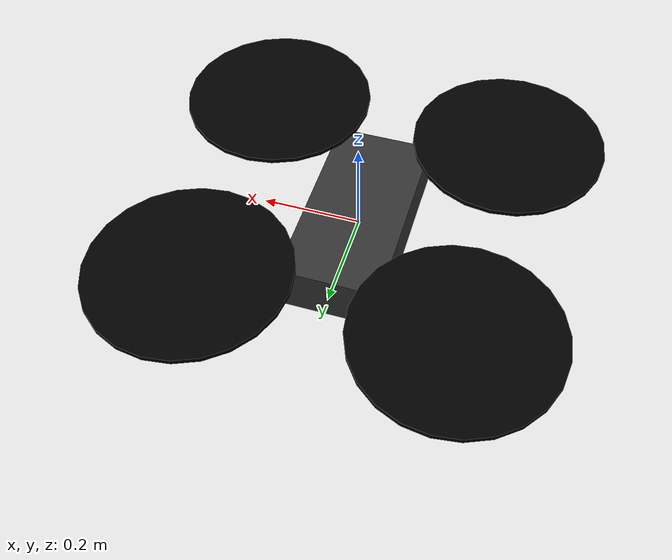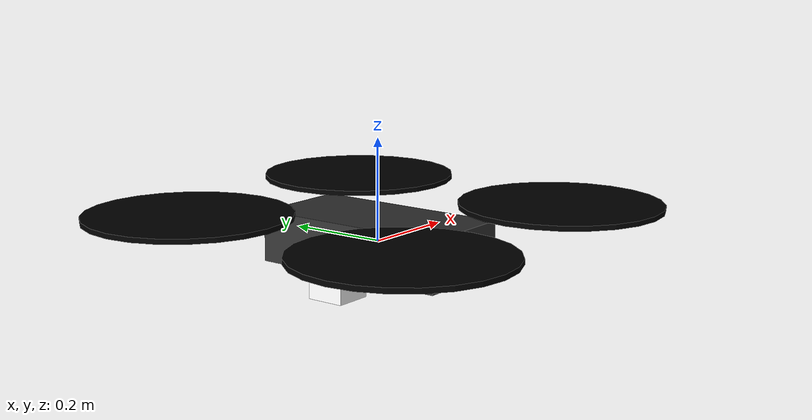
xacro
<?xml version="1.0"?>
<robot xmlns:xacro="http://www.ros.org/wiki/xacro" name="drone">

    <xacro:include filename="materials.xacro" />

    <!-- #region XACRO_MACROS -->

    <!-- #region CONSTANTS -->
    <xacro:property name="dronelength" value="0.2" />
    <xacro:property name="dronewidth" value="0.4" />
    <xacro:property name="droneheight" value="0.1" />
    <xacro:property name="dronemass" value="0.05" />
    <xacro:property name="propradius" value="0.2" />
    <xacro:property name="propheight" value="0.01" />
    <xacro:property name="camerasize" value="0.08" />
    <!-- #endregion -->

    <!-- #region MAKE_BOX -->
    <xacro:macro name="make_box" params="length width height mass material originxyz originrpy">
        <visual>
            <origin rpy="${originrpy}" xyz="${originxyz}"/>
            <geometry>
                <box size="${length} ${width} ${height}"/>
            </geometry>
            <material name="${material}"/>
        </visual>
        <collision>
            <origin rpy="${originrpy}" xyz="${originxyz}"/>
            <geometry>
                <box size="${length} ${width} ${height}"/>
            </geometry>
        </collision>
        <inertial>
            <mass value="${mass}"/>
            <inertia
                ixx="${1/12 * mass * (height*height + length*length)}"
                iyy="${1/12 * mass * (width*width + length*length)}"
                izz="${1/12 * mass * (width*width + height*height)}"
                ixy="0"
                ixz="0"
                iyz="0"
            />
        </inertial>
    </xacro:macro>
    <!-- #endregion -->

    <!-- #region MAKE_CYLINDER -->
    <xacro:macro name="make_cylinder" params="length radius mass material originxyz originrpy">
        <visual>
            <origin rpy="${originrpy}" xyz="${originxyz}"/>
            <geometry>
                <cylinder length="${length}" radius="${radius}"/>
            </geometry>
            <material name="${material}"/>
        </visual>
        <collision>
            <origin xyz="${originxyz}" rpy="${originrpy}"/>
            <geometry>
                <cylinder length="${length}" radius="${length}"/>
            </geometry>
        </collision>
        <inertial>
            <mass value="${mass}"/>
            <inertia
                ixx="${1/12 * mass * (3*radius*radius + length*length)}"
                iyy="${1/12 * mass * (3*radius*radius + length*length)}"
                izz="${1/2 * mass * radius*radius}"
                ixy="0"
                ixz="0"
                iyz="0"
            />
        </inertial>
    </xacro:macro>
    <!-- #endregion -->

    <!-- #endregion -->

    <!-- ROBOT BEGINS HERE -->
    <!-- ROBOT BEGINS HERE -->
    <!-- ROBOT BEGINS HERE -->

    <!-- #region BASE -->
    <link name="base_link">
        <xacro:make_box length="${dronelength}" width="${dronewidth}" height="${droneheight}" mass="${dronemass}" material="grey" originxyz="0 0 0" originrpy="0 0 0"/>
    </link>
    <!-- #endregion -->

    <!-- #region propS -->
    <!-- #region FRONT_LEFT_prop -->
    <link name="front_left_prop">
        <xacro:make_cylinder length="${propheight}" radius="${propradius}" mass="${dronemass}" material="black" originxyz="0.0051 0 0" originrpy="0 0 0"/>
    </link>

    <joint name="base_to_front_left_prop" type="fixed">
        <parent link="base_link"/>
        <child link="front_left_prop"/>
        <!-- joint of child is xyz away from parent -->
        <origin xyz="0.25 0.25 ${droneheight/2 + propheight}"/>
        <axis xyz="1 0 0"/>
    </joint>
    <!-- #endregion -->

    <!-- #region FRONT_RIGHT_prop -->
    <link name="front_right_prop">
        <xacro:make_cylinder length="${propheight}" radius="${propradius}" mass="${dronemass}" material="black" originxyz="0.0051 0 0" originrpy="0 0 0"/>
    </link>

    <joint name="base_to_front_right_prop" type="fixed">
        <parent link="base_link"/>
        <child link="front_right_prop"/>
        <!-- joint of child is xyz away from parent -->
        <origin xyz="0.25 -0.25 ${droneheight/2 + propheight}"/>
        <axis xyz="1 0 0"/>
    </joint>
    <!-- #endregion -->

    <!-- #region BACK_LEFT_prop -->
    <link name="back_left_prop">
        <xacro:make_cylinder length="${propheight}" radius="${propradius}" mass="${dronemass}" material="black" originxyz="-0.0051 0 0" originrpy="0 0 0"/>
    </link>

    <joint name="base_to_back_left_prop" type="fixed">
        <parent link="base_link"/>
        <child link="back_left_prop"/>
        <!-- joint of child is xyz away from parent -->
        <origin xyz="-0.25 0.25 ${droneheight/2 + propheight}"/>
        <axis xyz="1 0 0"/>
    </joint>
    <!-- #endregion -->

    <!-- #region BACK_RIGHT_prop -->
    <link name="back_right_prop">
        <xacro:make_cylinder length="${propheight}" radius="${propradius}" mass="${dronemass}" material="black" originxyz="-0.0051 0 0" originrpy="0 0 0"/>
    </link>

    <joint name="base_to_back_right_prop" type="fixed">
        <parent link="base_link"/>
        <child link="back_right_prop"/>
        <!-- joint of child is xyz away from parent -->
        <origin xyz="-0.25 -0.25 ${droneheight/2 + propheight}"/>
        <axis xyz="1 0 0"/>
    </joint>
    <!-- #endregion -->
    <!-- #endregion -->

    <!-- #region CAMERA -->
    <link name="camera">
        <xacro:make_box length="${camerasize}" width="${camerasize}" height="${camerasize}" mass="0" material="white" originxyz="0 0 ${camerasize/2}" originrpy="0 0 0"/>
    </link>

    <joint name="base_to_camera" type="fixed">
        <axis xyz="0 ${camerasize/2} 0" />
        <origin xyz="0 ${dronelength/2} ${-droneheight/2-camerasize}" rpy="0 0 1.57"/>
        <parent link="base_link"/>
        <child link="camera"/>
    </joint>
    <!-- #endregion -->

</robot>

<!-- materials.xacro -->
<robot>
    <material name="black">
        <color rgba="0.0 0.0 0.0 1.0"/>
    </material>

    <material name="blue">
        <color rgba="0.0 0.0 0.8 1.0"/>
    </material>

    <material name="green">
        <color rgba="0.0 0.8 0.0 1.0"/>
    </material>

    <material name="grey">
        <color rgba="0.2 0.2 0.2 1.0"/>
    </material>

    <material name="orange">
        <color rgba="${255/255} ${108/255} ${10/255} 1.0"/>
    </material>

    <material name="brown">
        <color rgba="${222/255} ${207/255} ${195/255} 1.0"/>
    </material>

    <material name="red">
        <color rgba="0.8 0.0 0.0 1.0"/>
    </material>

    <material name="white">
        <color rgba="1.0 1.0 1.0 1.0"/>
    </material>
</robot>
